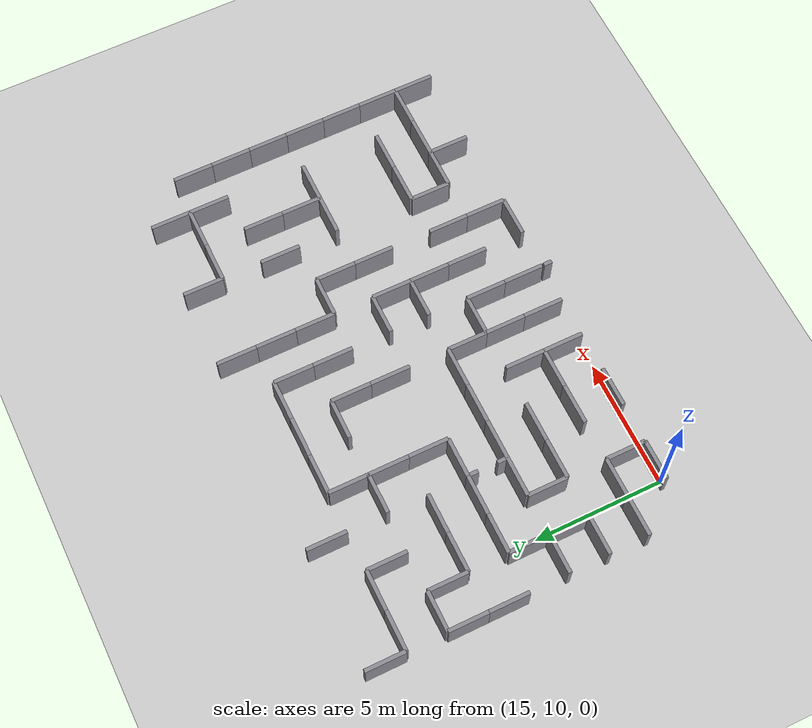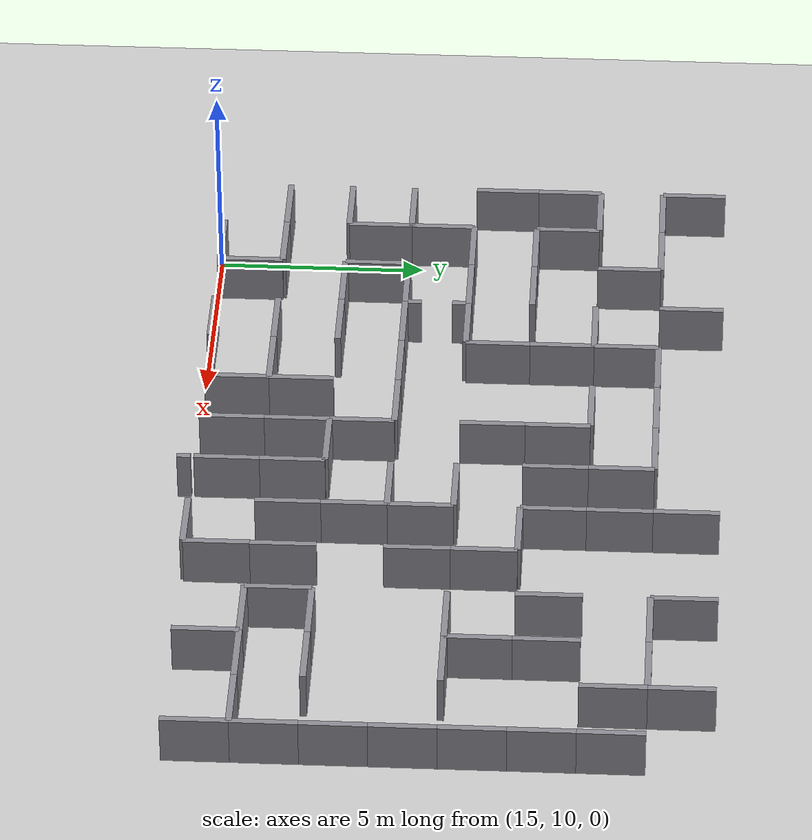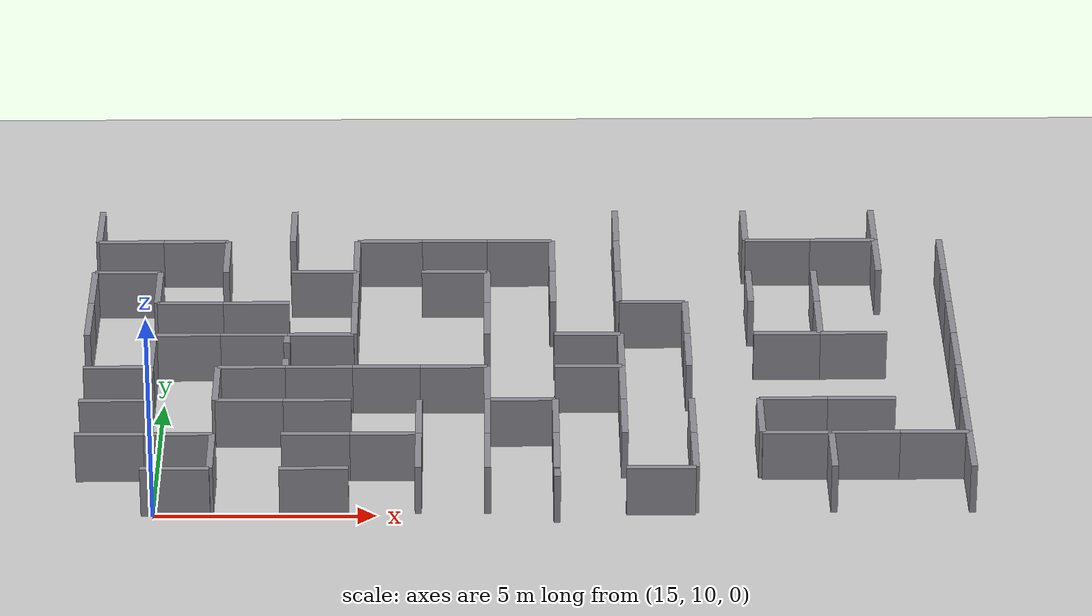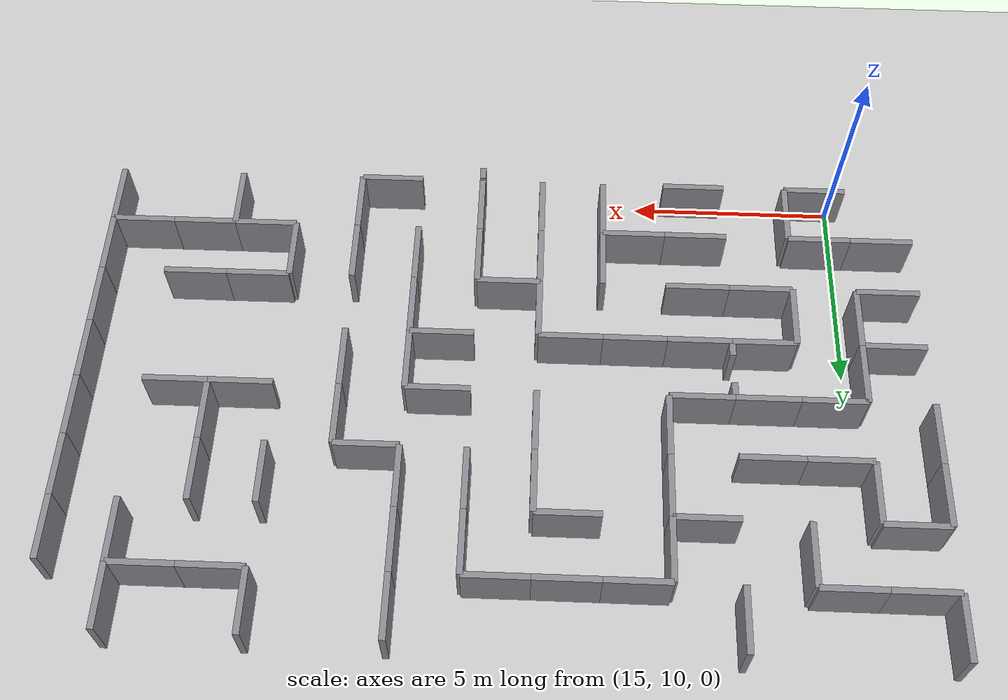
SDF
<sdf version="1.10">
 <world name="sar_maze_generated">
  <model name="ground_plane">
   <static>true</static>
   <link name="link">
    <collision name="collision">
     <geometry><plane><normal>0 0 1</normal><size>51.1 51.1</size></plane></geometry>
    </collision>
    <visual name="visual">
     <geometry><plane><normal>0 0 1</normal><size>51.1 51.1</size></plane></geometry>
     <material><ambient>0.8 0.8 0.8 1</ambient><diffuse>0.8 0.8 0.8 1</diffuse></material>
    </visual>
    <pose>16.27 16.27 0 0 0 0</pose>
    <inertial>
     <mass>1</mass>
     <inertia><ixx>1</ixx><ixy>0</ixy><ixz>0</ixz><iyy>1</iyy><iyz>0</iyz><izz>1</izz></inertia>
    </inertial>
   </link>
  </model>
  <model name="maze_structure">
   <static>true</static>
   <link name="wall_h_150">
    <static>true</static>
    <pose>15.5000 10.0750 0.6000 0 0 0</pose>
    <collision name="wall_h_150_collision">
     <geometry><box><size>1.5500 0.1500 1.2000</size></box></geometry>
    </collision>
    <visual name="wall_h_150_visual">
     <geometry><box><size>1.5500 0.1500 1.2000</size></box></geometry>
     <material><ambient>0.55 0.55 0.58 1</ambient><diffuse>0.55 0.55 0.58 1</diffuse></material>
    </visual>
   </link>
   <link name="wall_h_152">
    <static>true</static>
    <pose>18.6000 10.0750 0.6000 0 0 0</pose>
    <collision name="wall_h_152_collision">
     <geometry><box><size>1.5500 0.1500 1.2000</size></box></geometry>
    </collision>
    <visual name="wall_h_152_visual">
     <geometry><box><size>1.5500 0.1500 1.2000</size></box></geometry>
     <material><ambient>0.55 0.55 0.58 1</ambient><diffuse>0.55 0.55 0.58 1</diffuse></material>
    </visual>
   </link>
   <link name="pinch_stub_155">
    <static>true</static>
    <pose>24.0250 9.8375 0.6000 0 0 0</pose>
    <collision name="pinch_stub_155_collision">
     <geometry><box><size>0.1500 0.3250 1.2000</size></box></geometry>
    </collision>
    <visual name="pinch_stub_155_visual">
     <geometry><box><size>0.1500 0.3250 1.2000</size></box></geometry>
     <material><ambient>0.55 0.55 0.58 1</ambient><diffuse>0.55 0.55 0.58 1</diffuse></material>
    </visual>
   </link>
   <link name="wall_h_156">
    <static>true</static>
    <pose>26.3500 10.0750 0.6000 0 0 0</pose>
    <collision name="wall_h_156_collision">
     <geometry><box><size>1.5500 0.1500 1.2000</size></box></geometry>
    </collision>
    <visual name="wall_h_156_visual">
     <geometry><box><size>1.5500 0.1500 1.2000</size></box></geometry>
     <material><ambient>0.55 0.55 0.58 1</ambient><diffuse>0.55 0.55 0.58 1</diffuse></material>
    </visual>
   </link>
   <link name="wall_h_172">
    <static>true</static>
    <pose>13.9500 11.6250 0.6000 0 0 0</pose>
    <collision name="wall_h_172_collision">
     <geometry><box><size>1.5500 0.1500 1.2000</size></box></geometry>
    </collision>
    <visual name="wall_h_172_visual">
     <geometry><box><size>1.5500 0.1500 1.2000</size></box></geometry>
     <material><ambient>0.55 0.55 0.58 1</ambient><diffuse>0.55 0.55 0.58 1</diffuse></material>
    </visual>
   </link>
   <link name="wall_h_173">
    <static>true</static>
    <pose>15.5000 11.6250 0.6000 0 0 0</pose>
    <collision name="wall_h_173_collision">
     <geometry><box><size>1.5500 0.1500 1.2000</size></box></geometry>
    </collision>
    <visual name="wall_h_173_visual">
     <geometry><box><size>1.5500 0.1500 1.2000</size></box></geometry>
     <material><ambient>0.55 0.55 0.58 1</ambient><diffuse>0.55 0.55 0.58 1</diffuse></material>
    </visual>
   </link>
   <link name="wall_v_174">
    <static>true</static>
    <pose>16.2750 10.8500 0.6000 0 0 0</pose>
    <collision name="wall_v_174_collision">
     <geometry><box><size>0.1500 1.5500 1.2000</size></box></geometry>
    </collision>
    <visual name="wall_v_174_visual">
     <geometry><box><size>0.1500 1.5500 1.2000</size></box></geometry>
     <material><ambient>0.55 0.55 0.58 1</ambient><diffuse>0.55 0.55 0.58 1</diffuse></material>
    </visual>
   </link>
   <link name="wall_h_175">
    <static>true</static>
    <pose>18.6000 11.6250 0.6000 0 0 0</pose>
    <collision name="wall_h_175_collision">
     <geometry><box><size>1.5500 0.1500 1.2000</size></box></geometry>
    </collision>
    <visual name="wall_h_175_visual">
     <geometry><box><size>1.5500 0.1500 1.2000</size></box></geometry>
     <material><ambient>0.55 0.55 0.58 1</ambient><diffuse>0.55 0.55 0.58 1</diffuse></material>
    </visual>
   </link>
   <link name="wall_h_176">
    <static>true</static>
    <pose>20.1500 11.6250 0.6000 0 0 0</pose>
    <collision name="wall_h_176_collision">
     <geometry><box><size>1.5500 0.1500 1.2000</size></box></geometry>
    </collision>
    <visual name="wall_h_176_visual">
     <geometry><box><size>1.5500 0.1500 1.2000</size></box></geometry>
     <material><ambient>0.55 0.55 0.58 1</ambient><diffuse>0.55 0.55 0.58 1</diffuse></material>
    </visual>
   </link>
   <link name="wall_v_177">
    <static>true</static>
    <pose>20.9250 10.8500 0.6000 0 0 0</pose>
    <collision name="wall_v_177_collision">
     <geometry><box><size>0.1500 1.5500 1.2000</size></box></geometry>
    </collision>
    <visual name="wall_v_177_visual">
     <geometry><box><size>0.1500 1.5500 1.2000</size></box></geometry>
     <material><ambient>0.55 0.55 0.58 1</ambient><diffuse>0.55 0.55 0.58 1</diffuse></material>
    </visual>
   </link>
   <link name="wall_v_178">
    <static>true</static>
    <pose>22.4750 10.8500 0.6000 0 0 0</pose>
    <collision name="wall_v_178_collision">
     <geometry><box><size>0.1500 1.5500 1.2000</size></box></geometry>
    </collision>
    <visual name="wall_v_178_visual">
     <geometry><box><size>0.1500 1.5500 1.2000</size></box></geometry>
     <material><ambient>0.55 0.55 0.58 1</ambient><diffuse>0.55 0.55 0.58 1</diffuse></material>
    </visual>
   </link>
   <link name="wall_v_179">
    <static>true</static>
    <pose>24.0250 10.8500 0.6000 0 0 0</pose>
    <collision name="wall_v_179_collision">
     <geometry><box><size>0.1500 1.5500 1.2000</size></box></geometry>
    </collision>
    <visual name="wall_v_179_visual">
     <geometry><box><size>0.1500 1.5500 1.2000</size></box></geometry>
     <material><ambient>0.55 0.55 0.58 1</ambient><diffuse>0.55 0.55 0.58 1</diffuse></material>
    </visual>
   </link>
   <link name="wall_v_180">
    <static>true</static>
    <pose>27.1250 10.8500 0.6000 0 0 0</pose>
    <collision name="wall_v_180_collision">
     <geometry><box><size>0.1500 1.5500 1.2000</size></box></geometry>
    </collision>
    <visual name="wall_v_180_visual">
     <geometry><box><size>0.1500 1.5500 1.2000</size></box></geometry>
     <material><ambient>0.55 0.55 0.58 1</ambient><diffuse>0.55 0.55 0.58 1</diffuse></material>
    </visual>
   </link>
   <link name="wall_h_181">
    <static>true</static>
    <pose>29.4500 11.6250 0.6000 0 0 0</pose>
    <collision name="wall_h_181_collision">
     <geometry><box><size>1.5500 0.1500 1.2000</size></box></geometry>
    </collision>
    <visual name="wall_h_181_visual">
     <geometry><box><size>1.5500 0.1500 1.2000</size></box></geometry>
     <material><ambient>0.55 0.55 0.58 1</ambient><diffuse>0.55 0.55 0.58 1</diffuse></material>
    </visual>
   </link>
   <link name="wall_v_182">
    <static>true</static>
    <pose>30.2250 10.8500 0.6000 0 0 0</pose>
    <collision name="wall_v_182_collision">
     <geometry><box><size>0.1500 1.5500 1.2000</size></box></geometry>
    </collision>
    <visual name="wall_v_182_visual">
     <geometry><box><size>0.1500 1.5500 1.2000</size></box></geometry>
     <material><ambient>0.55 0.55 0.58 1</ambient><diffuse>0.55 0.55 0.58 1</diffuse></material>
    </visual>
   </link>
   <link name="wall_h_183">
    <static>true</static>
    <pose>31.0000 11.6250 0.6000 0 0 0</pose>
    <collision name="wall_h_183_collision">
     <geometry><box><size>1.5500 0.1500 1.2000</size></box></geometry>
    </collision>
    <visual name="wall_h_183_visual">
     <geometry><box><size>1.5500 0.1500 1.2000</size></box></geometry>
     <material><ambient>0.55 0.55 0.58 1</ambient><diffuse>0.55 0.55 0.58 1</diffuse></material>
    </visual>
   </link>
   <link name="wall_h_184">
    <static>true</static>
    <pose>32.5500 11.6250 0.6000 0 0 0</pose>
    <collision name="wall_h_184_collision">
     <geometry><box><size>1.5500 0.1500 1.2000</size></box></geometry>
    </collision>
    <visual name="wall_h_184_visual">
     <geometry><box><size>1.5500 0.1500 1.2000</size></box></geometry>
     <material><ambient>0.55 0.55 0.58 1</ambient><diffuse>0.55 0.55 0.58 1</diffuse></material>
    </visual>
   </link>
   <link name="wall_boundary_v_185">
    <static>true</static>
    <pose>33.3250 10.8500 0.6000 0 0 0</pose>
    <collision name="wall_boundary_v_185_collision">
     <geometry><box><size>0.1500 1.5500 1.2000</size></box></geometry>
    </collision>
    <visual name="wall_boundary_v_185_visual">
     <geometry><box><size>0.1500 1.5500 1.2000</size></box></geometry>
     <material><ambient>0.55 0.55 0.58 1</ambient><diffuse>0.55 0.55 0.58 1</diffuse></material>
    </visual>
   </link>
   <link name="wall_h_195">
    <static>true</static>
    <pose>13.9500 13.1750 0.6000 0 0 0</pose>
    <collision name="wall_h_195_collision">
     <geometry><box><size>1.5500 0.1500 1.2000</size></box></geometry>
    </collision>
    <visual name="wall_h_195_visual">
     <geometry><box><size>1.5500 0.1500 1.2000</size></box></geometry>
     <material><ambient>0.55 0.55 0.58 1</ambient><diffuse>0.55 0.55 0.58 1</diffuse></material>
    </visual>
   </link>
   <link name="wall_h_196">
    <static>true</static>
    <pose>17.0500 13.1750 0.6000 0 0 0</pose>
    <collision name="wall_h_196_collision">
     <geometry><box><size>1.5500 0.1500 1.2000</size></box></geometry>
    </collision>
    <visual name="wall_h_196_visual">
     <geometry><box><size>1.5500 0.1500 1.2000</size></box></geometry>
     <material><ambient>0.55 0.55 0.58 1</ambient><diffuse>0.55 0.55 0.58 1</diffuse></material>
    </visual>
   </link>
   <link name="wall_h_197">
    <static>true</static>
    <pose>18.6000 13.1750 0.6000 0 0 0</pose>
    <collision name="wall_h_197_collision">
     <geometry><box><size>1.5500 0.1500 1.2000</size></box></geometry>
    </collision>
    <visual name="wall_h_197_visual">
     <geometry><box><size>1.5500 0.1500 1.2000</size></box></geometry>
     <material><ambient>0.55 0.55 0.58 1</ambient><diffuse>0.55 0.55 0.58 1</diffuse></material>
    </visual>
   </link>
   <link name="wall_v_198">
    <static>true</static>
    <pose>20.9250 12.4000 0.6000 0 0 0</pose>
    <collision name="wall_v_198_collision">
     <geometry><box><size>0.1500 1.5500 1.2000</size></box></geometry>
    </collision>
    <visual name="wall_v_198_visual">
     <geometry><box><size>0.1500 1.5500 1.2000</size></box></geometry>
     <material><ambient>0.55 0.55 0.58 1</ambient><diffuse>0.55 0.55 0.58 1</diffuse></material>
    </visual>
   </link>
   <link name="wall_v_199">
    <static>true</static>
    <pose>22.4750 12.4000 0.6000 0 0 0</pose>
    <collision name="wall_v_199_collision">
     <geometry><box><size>0.1500 1.5500 1.2000</size></box></geometry>
    </collision>
    <visual name="wall_v_199_visual">
     <geometry><box><size>0.1500 1.5500 1.2000</size></box></geometry>
     <material><ambient>0.55 0.55 0.58 1</ambient><diffuse>0.55 0.55 0.58 1</diffuse></material>
    </visual>
   </link>
   <link name="wall_h_200">
    <static>true</static>
    <pose>23.2500 13.1750 0.6000 0 0 0</pose>
    <collision name="wall_h_200_collision">
     <geometry><box><size>1.5500 0.1500 1.2000</size></box></geometry>
    </collision>
    <visual name="wall_h_200_visual">
     <geometry><box><size>1.5500 0.1500 1.2000</size></box></geometry>
     <material><ambient>0.55 0.55 0.58 1</ambient><diffuse>0.55 0.55 0.58 1</diffuse></material>
    </visual>
   </link>
   <link name="wall_v_201">
    <static>true</static>
    <pose>24.0250 12.4000 0.6000 0 0 0</pose>
    <collision name="wall_v_201_collision">
     <geometry><box><size>0.1500 1.5500 1.2000</size></box></geometry>
    </collision>
    <visual name="wall_v_201_visual">
     <geometry><box><size>0.1500 1.5500 1.2000</size></box></geometry>
     <material><ambient>0.55 0.55 0.58 1</ambient><diffuse>0.55 0.55 0.58 1</diffuse></material>
    </visual>
   </link>
   <link name="wall_v_202">
    <static>true</static>
    <pose>25.5750 12.4000 0.6000 0 0 0</pose>
    <collision name="wall_v_202_collision">
     <geometry><box><size>0.1500 1.5500 1.2000</size></box></geometry>
    </collision>
    <visual name="wall_v_202_visual">
     <geometry><box><size>0.1500 1.5500 1.2000</size></box></geometry>
     <material><ambient>0.55 0.55 0.58 1</ambient><diffuse>0.55 0.55 0.58 1</diffuse></material>
    </visual>
   </link>
   <link name="wall_v_203">
    <static>true</static>
    <pose>27.1250 12.4000 0.6000 0 0 0</pose>
    <collision name="wall_v_203_collision">
     <geometry><box><size>0.1500 1.5500 1.2000</size></box></geometry>
    </collision>
    <visual name="wall_v_203_visual">
     <geometry><box><size>0.1500 1.5500 1.2000</size></box></geometry>
     <material><ambient>0.55 0.55 0.58 1</ambient><diffuse>0.55 0.55 0.58 1</diffuse></material>
    </visual>
   </link>
   <link name="wall_v_204">
    <static>true</static>
    <pose>28.6750 12.4000 0.6000 0 0 0</pose>
    <collision name="wall_v_204_collision">
     <geometry><box><size>0.1500 1.5500 1.2000</size></box></geometry>
    </collision>
    <visual name="wall_v_204_visual">
     <geometry><box><size>0.1500 1.5500 1.2000</size></box></geometry>
     <material><ambient>0.55 0.55 0.58 1</ambient><diffuse>0.55 0.55 0.58 1</diffuse></material>
    </visual>
   </link>
   <link name="wall_h_205">
    <static>true</static>
    <pose>29.4500 13.1750 0.6000 0 0 0</pose>
    <collision name="wall_h_205_collision">
     <geometry><box><size>1.5500 0.1500 1.2000</size></box></geometry>
    </collision>
    <visual name="wall_h_205_visual">
     <geometry><box><size>1.5500 0.1500 1.2000</size></box></geometry>
     <material><ambient>0.55 0.55 0.58 1</ambient><diffuse>0.55 0.55 0.58 1</diffuse></material>
    </visual>
   </link>
   <link name="wall_h_206">
    <static>true</static>
    <pose>31.0000 13.1750 0.6000 0 0 0</pose>
    <collision name="wall_h_206_collision">
     <geometry><box><size>1.5500 0.1500 1.2000</size></box></geometry>
    </collision>
    <visual name="wall_h_206_visual">
     <geometry><box><size>1.5500 0.1500 1.2000</size></box></geometry>
     <material><ambient>0.55 0.55 0.58 1</ambient><diffuse>0.55 0.55 0.58 1</diffuse></material>
    </visual>
   </link>
   <link name="wall_boundary_v_207">
    <static>true</static>
    <pose>33.3250 12.4000 0.6000 0 0 0</pose>
    <collision name="wall_boundary_v_207_collision">
     <geometry><box><size>0.1500 1.5500 1.2000</size></box></geometry>
    </collision>
    <visual name="wall_boundary_v_207_visual">
     <geometry><box><size>0.1500 1.5500 1.2000</size></box></geometry>
     <material><ambient>0.55 0.55 0.58 1</ambient><diffuse>0.55 0.55 0.58 1</diffuse></material>
    </visual>
   </link>
   <link name="wall_h_218">
    <static>true</static>
    <pose>13.9500 14.7250 0.6000 0 0 0</pose>
    <collision name="wall_h_218_collision">
     <geometry><box><size>1.5500 0.1500 1.2000</size></box></geometry>
    </collision>
    <visual name="wall_h_218_visual">
     <geometry><box><size>1.5500 0.1500 1.2000</size></box></geometry>
     <material><ambient>0.55 0.55 0.58 1</ambient><diffuse>0.55 0.55 0.58 1</diffuse></material>
    </visual>
   </link>
   <link name="wall_v_219">
    <static>true</static>
    <pose>14.7250 13.9500 0.6000 0 0 0</pose>
    <collision name="wall_v_219_collision">
     <geometry><box><size>0.1500 1.5500 1.2000</size></box></geometry>
    </collision>
    <visual name="wall_v_219_visual">
     <geometry><box><size>0.1500 1.5500 1.2000</size></box></geometry>
     <material><ambient>0.55 0.55 0.58 1</ambient><diffuse>0.55 0.55 0.58 1</diffuse></material>
    </visual>
   </link>
   <link name="wall_v_220">
    <static>true</static>
    <pose>16.2750 13.9500 0.6000 0 0 0</pose>
    <collision name="wall_v_220_collision">
     <geometry><box><size>0.1500 1.5500 1.2000</size></box></geometry>
    </collision>
    <visual name="wall_v_220_visual">
     <geometry><box><size>0.1500 1.5500 1.2000</size></box></geometry>
     <material><ambient>0.55 0.55 0.58 1</ambient><diffuse>0.55 0.55 0.58 1</diffuse></material>
    </visual>
   </link>
   <link name="wall_h_221">
    <static>true</static>
    <pose>17.0500 14.7250 0.6000 0 0 0</pose>
    <collision name="wall_h_221_collision">
     <geometry><box><size>1.5500 0.1500 1.2000</size></box></geometry>
    </collision>
    <visual name="wall_h_221_visual">
     <geometry><box><size>1.5500 0.1500 1.2000</size></box></geometry>
     <material><ambient>0.55 0.55 0.58 1</ambient><diffuse>0.55 0.55 0.58 1</diffuse></material>
    </visual>
   </link>
   <link name="wall_h_222">
    <static>true</static>
    <pose>18.6000 14.7250 0.6000 0 0 0</pose>
    <collision name="wall_h_222_collision">
     <geometry><box><size>1.5500 0.1500 1.2000</size></box></geometry>
    </collision>
    <visual name="wall_h_222_visual">
     <geometry><box><size>1.5500 0.1500 1.2000</size></box></geometry>
     <material><ambient>0.55 0.55 0.58 1</ambient><diffuse>0.55 0.55 0.58 1</diffuse></material>
    </visual>
   </link>
   <link name="wall_h_223">
    <static>true</static>
    <pose>20.1500 14.7250 0.6000 0 0 0</pose>
    <collision name="wall_h_223_collision">
     <geometry><box><size>1.5500 0.1500 1.2000</size></box></geometry>
    </collision>
    <visual name="wall_h_223_visual">
     <geometry><box><size>1.5500 0.1500 1.2000</size></box></geometry>
     <material><ambient>0.55 0.55 0.58 1</ambient><diffuse>0.55 0.55 0.58 1</diffuse></material>
    </visual>
   </link>
   <link name="wall_h_224">
    <static>true</static>
    <pose>21.7000 14.7250 0.6000 0 0 0</pose>
    <collision name="wall_h_224_collision">
     <geometry><box><size>1.5500 0.1500 1.2000</size></box></geometry>
    </collision>
    <visual name="wall_h_224_visual">
     <geometry><box><size>1.5500 0.1500 1.2000</size></box></geometry>
     <material><ambient>0.55 0.55 0.58 1</ambient><diffuse>0.55 0.55 0.58 1</diffuse></material>
    </visual>
   </link>
   <link name="wall_v_225">
    <static>true</static>
    <pose>22.4750 13.9500 0.6000 0 0 0</pose>
    <collision name="wall_v_225_collision">
     <geometry><box><size>0.1500 1.5500 1.2000</size></box></geometry>
    </collision>
    <visual name="wall_v_225_visual">
     <geometry><box><size>0.1500 1.5500 1.2000</size></box></geometry>
     <material><ambient>0.55 0.55 0.58 1</ambient><diffuse>0.55 0.55 0.58 1</diffuse></material>
    </visual>
   </link>
   <link name="wall_h_226">
    <static>true</static>
    <pose>24.8000 14.7250 0.6000 0 0 0</pose>
    <collision name="wall_h_226_collision">
     <geometry><box><size>1.5500 0.1500 1.2000</size></box></geometry>
    </collision>
    <visual name="wall_h_226_visual">
     <geometry><box><size>1.5500 0.1500 1.2000</size></box></geometry>
     <material><ambient>0.55 0.55 0.58 1</ambient><diffuse>0.55 0.55 0.58 1</diffuse></material>
    </visual>
   </link>
   <link name="wall_v_227">
    <static>true</static>
    <pose>25.5750 13.9500 0.6000 0 0 0</pose>
    <collision name="wall_v_227_collision">
     <geometry><box><size>0.1500 1.5500 1.2000</size></box></geometry>
    </collision>
    <visual name="wall_v_227_visual">
     <geometry><box><size>0.1500 1.5500 1.2000</size></box></geometry>
     <material><ambient>0.55 0.55 0.58 1</ambient><diffuse>0.55 0.55 0.58 1</diffuse></material>
    </visual>
   </link>
   <link name="wall_boundary_v_228">
    <static>true</static>
    <pose>33.3250 13.9500 0.6000 0 0 0</pose>
    <collision name="wall_boundary_v_228_collision">
     <geometry><box><size>0.1500 1.5500 1.2000</size></box></geometry>
    </collision>
    <visual name="wall_boundary_v_228_visual">
     <geometry><box><size>0.1500 1.5500 1.2000</size></box></geometry>
     <material><ambient>0.55 0.55 0.58 1</ambient><diffuse>0.55 0.55 0.58 1</diffuse></material>
    </visual>
   </link>
   <link name="wall_v_236">
    <static>true</static>
    <pose>14.7250 15.5000 0.6000 0 0 0</pose>
    <collision name="wall_v_236_collision">
     <geometry><box><size>0.1500 1.5500 1.2000</size></box></geometry>
    </collision>
    <visual name="wall_v_236_visual">
     <geometry><box><size>0.1500 1.5500 1.2000</size></box></geometry>
     <material><ambient>0.55 0.55 0.58 1</ambient><diffuse>0.55 0.55 0.58 1</diffuse></material>
    </visual>
   </link>
   <link name="wall_h_237">
    <static>true</static>
    <pose>15.5000 16.2750 0.6000 0 0 0</pose>
    <collision name="wall_h_237_collision">
     <geometry><box><size>1.5500 0.1500 1.2000</size></box></geometry>
    </collision>
    <visual name="wall_h_237_visual">
     <geometry><box><size>1.5500 0.1500 1.2000</size></box></geometry>
     <material><ambient>0.55 0.55 0.58 1</ambient><diffuse>0.55 0.55 0.58 1</diffuse></material>
    </visual>
   </link>
   <link name="wall_h_238">
    <static>true</static>
    <pose>17.0500 16.2750 0.6000 0 0 0</pose>
    <collision name="wall_h_238_collision">
     <geometry><box><size>1.5500 0.1500 1.2000</size></box></geometry>
    </collision>
    <visual name="wall_h_238_visual">
     <geometry><box><size>1.5500 0.1500 1.2000</size></box></geometry>
     <material><ambient>0.55 0.55 0.58 1</ambient><diffuse>0.55 0.55 0.58 1</diffuse></material>
    </visual>
   </link>
   <link name="pinch_stub_239">
    <static>true</static>
    <pose>17.8250 14.9625 0.6000 0 0 0</pose>
    <collision name="pinch_stub_239_collision">
     <geometry><box><size>0.1500 0.3250 1.2000</size></box></geometry>
    </collision>
    <visual name="pinch_stub_239_visual">
     <geometry><box><size>0.1500 0.3250 1.2000</size></box></geometry>
     <material><ambient>0.55 0.55 0.58 1</ambient><diffuse>0.55 0.55 0.58 1</diffuse></material>
    </visual>
   </link>
   <link name="pinch_stub_240">
    <static>true</static>
    <pose>17.8250 16.0375 0.6000 0 0 0</pose>
    <collision name="pinch_stub_240_collision">
     <geometry><box><size>0.1500 0.3250 1.2000</size></box></geometry>
    </collision>
    <visual name="pinch_stub_240_visual">
     <geometry><box><size>0.1500 0.3250 1.2000</size></box></geometry>
     <material><ambient>0.55 0.55 0.58 1</ambient><diffuse>0.55 0.55 0.58 1</diffuse></material>
    </visual>
   </link>
   <link name="wall_h_241">
    <static>true</static>
    <pose>18.6000 16.2750 0.6000 0 0 0</pose>
    <collision name="wall_h_241_collision">
     <geometry><box><size>1.5500 0.1500 1.2000</size></box></geometry>
    </collision>
    <visual name="wall_h_241_visual">
     <geometry><box><size>1.5500 0.1500 1.2000</size></box></geometry>
     <material><ambient>0.55 0.55 0.58 1</ambient><diffuse>0.55 0.55 0.58 1</diffuse></material>
    </visual>
   </link>
   <link name="wall_h_242">
    <static>true</static>
    <pose>24.8000 16.2750 0.6000 0 0 0</pose>
    <collision name="wall_h_242_collision">
     <geometry><box><size>1.5500 0.1500 1.2000</size></box></geometry>
    </collision>
    <visual name="wall_h_242_visual">
     <geometry><box><size>1.5500 0.1500 1.2000</size></box></geometry>
     <material><ambient>0.55 0.55 0.58 1</ambient><diffuse>0.55 0.55 0.58 1</diffuse></material>
    </visual>
   </link>
   <link name="wall_v_243">
    <static>true</static>
    <pose>25.5750 15.5000 0.6000 0 0 0</pose>
    <collision name="wall_v_243_collision">
     <geometry><box><size>0.1500 1.5500 1.2000</size></box></geometry>
    </collision>
    <visual name="wall_v_243_visual">
     <geometry><box><size>0.1500 1.5500 1.2000</size></box></geometry>
     <material><ambient>0.55 0.55 0.58 1</ambient><diffuse>0.55 0.55 0.58 1</diffuse></material>
    </visual>
   </link>
   <link name="wall_v_244">
    <static>true</static>
    <pose>27.1250 15.5000 0.6000 0 0 0</pose>
    <collision name="wall_v_244_collision">
     <geometry><box><size>0.1500 1.5500 1.2000</size></box></geometry>
    </collision>
    <visual name="wall_v_244_visual">
     <geometry><box><size>0.1500 1.5500 1.2000</size></box></geometry>
     <material><ambient>0.55 0.55 0.58 1</ambient><diffuse>0.55 0.55 0.58 1</diffuse></material>
    </visual>
   </link>
   <link name="wall_h_245">
    <static>true</static>
    <pose>29.4500 16.2750 0.6000 0 0 0</pose>
    <collision name="wall_h_245_collision">
     <geometry><box><size>1.5500 0.1500 1.2000</size></box></geometry>
    </collision>
    <visual name="wall_h_245_visual">
     <geometry><box><size>1.5500 0.1500 1.2000</size></box></geometry>
     <material><ambient>0.55 0.55 0.58 1</ambient><diffuse>0.55 0.55 0.58 1</diffuse></material>
    </visual>
   </link>
   <link name="wall_h_246">
    <static>true</static>
    <pose>31.0000 16.2750 0.6000 0 0 0</pose>
    <collision name="wall_h_246_collision">
     <geometry><box><size>1.5500 0.1500 1.2000</size></box></geometry>
    </collision>
    <visual name="wall_h_246_visual">
     <geometry><box><size>1.5500 0.1500 1.2000</size></box></geometry>
     <material><ambient>0.55 0.55 0.58 1</ambient><diffuse>0.55 0.55 0.58 1</diffuse></material>
    </visual>
   </link>
   <link name="wall_boundary_v_247">
    <static>true</static>
    <pose>33.3250 15.5000 0.6000 0 0 0</pose>
    <collision name="wall_boundary_v_247_collision">
     <geometry><box><size>0.1500 1.5500 1.2000</size></box></geometry>
    </collision>
    <visual name="wall_boundary_v_247_visual">
     <geometry><box><size>0.1500 1.5500 1.2000</size></box></geometry>
     <material><ambient>0.55 0.55 0.58 1</ambient><diffuse>0.55 0.55 0.58 1</diffuse></material>
    </visual>
   </link>
   <link name="wall_v_257">
    <static>true</static>
    <pose>13.1750 17.0500 0.6000 0 0 0</pose>
    <collision name="wall_v_257_collision">
     <geometry><box><size>0.1500 1.5500 1.2000</size></box></geometry>
    </collision>
    <visual name="wall_v_257_visual">
     <geometry><box><size>0.1500 1.5500 1.2000</size></box></geometry>
     <material><ambient>0.55 0.55 0.58 1</ambient><diffuse>0.55 0.55 0.58 1</diffuse></material>
    </visual>
   </link>
   <link name="wall_h_258">
    <static>true</static>
    <pose>15.5000 17.8250 0.6000 0 0 0</pose>
    <collision name="wall_h_258_collision">
     <geometry><box><size>1.5500 0.1500 1.2000</size></box></geometry>
    </collision>
    <visual name="wall_h_258_visual">
     <geometry><box><size>1.5500 0.1500 1.2000</size></box></geometry>
     <material><ambient>0.55 0.55 0.58 1</ambient><diffuse>0.55 0.55 0.58 1</diffuse></material>
    </visual>
   </link>
   <link name="wall_h_259">
    <static>true</static>
    <pose>17.0500 17.8250 0.6000 0 0 0</pose>
    <collision name="wall_h_259_collision">
     <geometry><box><size>1.5500 0.1500 1.2000</size></box></geometry>
    </collision>
    <visual name="wall_h_259_visual">
     <geometry><box><size>1.5500 0.1500 1.2000</size></box></geometry>
     <material><ambient>0.55 0.55 0.58 1</ambient><diffuse>0.55 0.55 0.58 1</diffuse></material>
    </visual>
   </link>
   <link name="wall_v_260">
    <static>true</static>
    <pose>19.3750 17.0500 0.6000 0 0 0</pose>
    <collision name="wall_v_260_collision">
     <geometry><box><size>0.1500 1.5500 1.2000</size></box></geometry>
    </collision>
    <visual name="wall_v_260_visual">
     <geometry><box><size>0.1500 1.5500 1.2000</size></box></geometry>
     <material><ambient>0.55 0.55 0.58 1</ambient><diffuse>0.55 0.55 0.58 1</diffuse></material>
    </visual>
   </link>
   <link name="wall_v_261">
    <static>true</static>
    <pose>22.4750 17.0500 0.6000 0 0 0</pose>
    <collision name="wall_v_261_collision">
     <geometry><box><size>0.1500 1.5500 1.2000</size></box></geometry>
    </collision>
    <visual name="wall_v_261_visual">
     <geometry><box><size>0.1500 1.5500 1.2000</size></box></geometry>
     <material><ambient>0.55 0.55 0.58 1</ambient><diffuse>0.55 0.55 0.58 1</diffuse></material>
    </visual>
   </link>
   <link name="wall_h_262">
    <static>true</static>
    <pose>26.3500 17.8250 0.6000 0 0 0</pose>
    <collision name="wall_h_262_collision">
     <geometry><box><size>1.5500 0.1500 1.2000</size></box></geometry>
    </collision>
    <visual name="wall_h_262_visual">
     <geometry><box><size>1.5500 0.1500 1.2000</size></box></geometry>
     <material><ambient>0.55 0.55 0.58 1</ambient><diffuse>0.55 0.55 0.58 1</diffuse></material>
    </visual>
   </link>
   <link name="wall_v_263">
    <static>true</static>
    <pose>27.1250 17.0500 0.6000 0 0 0</pose>
    <collision name="wall_v_263_collision">
     <geometry><box><size>0.1500 1.5500 1.2000</size></box></geometry>
    </collision>
    <visual name="wall_v_263_visual">
     <geometry><box><size>0.1500 1.5500 1.2000</size></box></geometry>
     <material><ambient>0.55 0.55 0.58 1</ambient><diffuse>0.55 0.55 0.58 1</diffuse></material>
    </visual>
   </link>
   <link name="wall_v_264">
    <static>true</static>
    <pose>30.2250 17.0500 0.6000 0 0 0</pose>
    <collision name="wall_v_264_collision">
     <geometry><box><size>0.1500 1.5500 1.2000</size></box></geometry>
    </collision>
    <visual name="wall_v_264_visual">
     <geometry><box><size>0.1500 1.5500 1.2000</size></box></geometry>
     <material><ambient>0.55 0.55 0.58 1</ambient><diffuse>0.55 0.55 0.58 1</diffuse></material>
    </visual>
   </link>
   <link name="wall_boundary_v_265">
    <static>true</static>
    <pose>33.3250 17.0500 0.6000 0 0 0</pose>
    <collision name="wall_boundary_v_265_collision">
     <geometry><box><size>0.1500 1.5500 1.2000</size></box></geometry>
    </collision>
    <visual name="wall_boundary_v_265_visual">
     <geometry><box><size>0.1500 1.5500 1.2000</size></box></geometry>
     <material><ambient>0.55 0.55 0.58 1</ambient><diffuse>0.55 0.55 0.58 1</diffuse></material>
    </visual>
   </link>
   <link name="wall_v_272">
    <static>true</static>
    <pose>13.1750 18.6000 0.6000 0 0 0</pose>
    <collision name="wall_v_272_collision">
     <geometry><box><size>0.1500 1.5500 1.2000</size></box></geometry>
    </collision>
    <visual name="wall_v_272_visual">
     <geometry><box><size>0.1500 1.5500 1.2000</size></box></geometry>
     <material><ambient>0.55 0.55 0.58 1</ambient><diffuse>0.55 0.55 0.58 1</diffuse></material>
    </visual>
   </link>
   <link name="wall_h_273">
    <static>true</static>
    <pose>13.9500 19.3750 0.6000 0 0 0</pose>
    <collision name="wall_h_273_collision">
     <geometry><box><size>1.5500 0.1500 1.2000</size></box></geometry>
    </collision>
    <visual name="wall_h_273_visual">
     <geometry><box><size>1.5500 0.1500 1.2000</size></box></geometry>
     <material><ambient>0.55 0.55 0.58 1</ambient><diffuse>0.55 0.55 0.58 1</diffuse></material>
    </visual>
   </link>
   <link name="wall_v_274">
    <static>true</static>
    <pose>14.7250 18.6000 0.6000 0 0 0</pose>
    <collision name="wall_v_274_collision">
     <geometry><box><size>0.1500 1.5500 1.2000</size></box></geometry>
    </collision>
    <visual name="wall_v_274_visual">
     <geometry><box><size>0.1500 1.5500 1.2000</size></box></geometry>
     <material><ambient>0.55 0.55 0.58 1</ambient><diffuse>0.55 0.55 0.58 1</diffuse></material>
    </visual>
   </link>
   <link name="wall_h_275">
    <static>true</static>
    <pose>18.6000 19.3750 0.6000 0 0 0</pose>
    <collision name="wall_h_275_collision">
     <geometry><box><size>1.5500 0.1500 1.2000</size></box></geometry>
    </collision>
    <visual name="wall_h_275_visual">
     <geometry><box><size>1.5500 0.1500 1.2000</size></box></geometry>
     <material><ambient>0.55 0.55 0.58 1</ambient><diffuse>0.55 0.55 0.58 1</diffuse></material>
    </visual>
   </link>
   <link name="wall_v_276">
    <static>true</static>
    <pose>19.3750 18.6000 0.6000 0 0 0</pose>
    <collision name="wall_v_276_collision">
     <geometry><box><size>0.1500 1.5500 1.2000</size></box></geometry>
    </collision>
    <visual name="wall_v_276_visual">
     <geometry><box><size>0.1500 1.5500 1.2000</size></box></geometry>
     <material><ambient>0.55 0.55 0.58 1</ambient><diffuse>0.55 0.55 0.58 1</diffuse></material>
    </visual>
   </link>
   <link name="wall_h_277">
    <static>true</static>
    <pose>21.7000 19.3750 0.6000 0 0 0</pose>
    <collision name="wall_h_277_collision">
     <geometry><box><size>1.5500 0.1500 1.2000</size></box></geometry>
    </collision>
    <visual name="wall_h_277_visual">
     <geometry><box><size>1.5500 0.1500 1.2000</size></box></geometry>
     <material><ambient>0.55 0.55 0.58 1</ambient><diffuse>0.55 0.55 0.58 1</diffuse></material>
    </visual>
   </link>
   <link name="wall_v_278">
    <static>true</static>
    <pose>22.4750 18.6000 0.6000 0 0 0</pose>
    <collision name="wall_v_278_collision">
     <geometry><box><size>0.1500 1.5500 1.2000</size></box></geometry>
    </collision>
    <visual name="wall_v_278_visual">
     <geometry><box><size>0.1500 1.5500 1.2000</size></box></geometry>
     <material><ambient>0.55 0.55 0.58 1</ambient><diffuse>0.55 0.55 0.58 1</diffuse></material>
    </visual>
   </link>
   <link name="wall_v_279">
    <static>true</static>
    <pose>24.0250 18.6000 0.6000 0 0 0</pose>
    <collision name="wall_v_279_collision">
     <geometry><box><size>0.1500 1.5500 1.2000</size></box></geometry>
    </collision>
    <visual name="wall_v_279_visual">
     <geometry><box><size>0.1500 1.5500 1.2000</size></box></geometry>
     <material><ambient>0.55 0.55 0.58 1</ambient><diffuse>0.55 0.55 0.58 1</diffuse></material>
    </visual>
   </link>
   <link name="wall_v_280">
    <static>true</static>
    <pose>25.5750 18.6000 0.6000 0 0 0</pose>
    <collision name="wall_v_280_collision">
     <geometry><box><size>0.1500 1.5500 1.2000</size></box></geometry>
    </collision>
    <visual name="wall_v_280_visual">
     <geometry><box><size>0.1500 1.5500 1.2000</size></box></geometry>
     <material><ambient>0.55 0.55 0.58 1</ambient><diffuse>0.55 0.55 0.58 1</diffuse></material>
    </visual>
   </link>
   <link name="wall_v_281">
    <static>true</static>
    <pose>28.6750 18.6000 0.6000 0 0 0</pose>
    <collision name="wall_v_281_collision">
     <geometry><box><size>0.1500 1.5500 1.2000</size></box></geometry>
    </collision>
    <visual name="wall_v_281_visual">
     <geometry><box><size>0.1500 1.5500 1.2000</size></box></geometry>
     <material><ambient>0.55 0.55 0.58 1</ambient><diffuse>0.55 0.55 0.58 1</diffuse></material>
    </visual>
   </link>
   <link name="wall_v_282">
    <static>true</static>
    <pose>30.2250 18.6000 0.6000 0 0 0</pose>
    <collision name="wall_v_282_collision">
     <geometry><box><size>0.1500 1.5500 1.2000</size></box></geometry>
    </collision>
    <visual name="wall_v_282_visual">
     <geometry><box><size>0.1500 1.5500 1.2000</size></box></geometry>
     <material><ambient>0.55 0.55 0.58 1</ambient><diffuse>0.55 0.55 0.58 1</diffuse></material>
    </visual>
   </link>
   <link name="wall_boundary_v_283">
    <static>true</static>
    <pose>33.3250 18.6000 0.6000 0 0 0</pose>
    <collision name="wall_boundary_v_283_collision">
     <geometry><box><size>0.1500 1.5500 1.2000</size></box></geometry>
    </collision>
    <visual name="wall_boundary_v_283_visual">
     <geometry><box><size>0.1500 1.5500 1.2000</size></box></geometry>
     <material><ambient>0.55 0.55 0.58 1</ambient><diffuse>0.55 0.55 0.58 1</diffuse></material>
    </visual>
   </link>
   <link name="wall_h_291">
    <static>true</static>
    <pose>13.9500 20.9250 0.6000 0 0 0</pose>
    <collision name="wall_h_291_collision">
     <geometry><box><size>1.5500 0.1500 1.2000</size></box></geometry>
    </collision>
    <visual name="wall_h_291_visual">
     <geometry><box><size>1.5500 0.1500 1.2000</size></box></geometry>
     <material><ambient>0.55 0.55 0.58 1</ambient><diffuse>0.55 0.55 0.58 1</diffuse></material>
    </visual>
   </link>
   <link name="wall_h_292">
    <static>true</static>
    <pose>15.5000 20.9250 0.6000 0 0 0</pose>
    <collision name="wall_h_292_collision">
     <geometry><box><size>1.5500 0.1500 1.2000</size></box></geometry>
    </collision>
    <visual name="wall_h_292_visual">
     <geometry><box><size>1.5500 0.1500 1.2000</size></box></geometry>
     <material><ambient>0.55 0.55 0.58 1</ambient><diffuse>0.55 0.55 0.58 1</diffuse></material>
    </visual>
   </link>
   <link name="wall_v_293">
    <static>true</static>
    <pose>16.2750 20.1500 0.6000 0 0 0</pose>
    <collision name="wall_v_293_collision">
     <geometry><box><size>0.1500 1.5500 1.2000</size></box></geometry>
    </collision>
    <visual name="wall_v_293_visual">
     <geometry><box><size>0.1500 1.5500 1.2000</size></box></geometry>
     <material><ambient>0.55 0.55 0.58 1</ambient><diffuse>0.55 0.55 0.58 1</diffuse></material>
    </visual>
   </link>
   <link name="wall_v_294">
    <static>true</static>
    <pose>19.3750 20.1500 0.6000 0 0 0</pose>
    <collision name="wall_v_294_collision">
     <geometry><box><size>0.1500 1.5500 1.2000</size></box></geometry>
    </collision>
    <visual name="wall_v_294_visual">
     <geometry><box><size>0.1500 1.5500 1.2000</size></box></geometry>
     <material><ambient>0.55 0.55 0.58 1</ambient><diffuse>0.55 0.55 0.58 1</diffuse></material>
    </visual>
   </link>
   <link name="wall_h_295">
    <static>true</static>
    <pose>20.1500 20.9250 0.6000 0 0 0</pose>
    <collision name="wall_h_295_collision">
     <geometry><box><size>1.5500 0.1500 1.2000</size></box></geometry>
    </collision>
    <visual name="wall_h_295_visual">
     <geometry><box><size>1.5500 0.1500 1.2000</size></box></geometry>
     <material><ambient>0.55 0.55 0.58 1</ambient><diffuse>0.55 0.55 0.58 1</diffuse></material>
    </visual>
   </link>
   <link name="wall_h_296">
    <static>true</static>
    <pose>21.7000 20.9250 0.6000 0 0 0</pose>
    <collision name="wall_h_296_collision">
     <geometry><box><size>1.5500 0.1500 1.2000</size></box></geometry>
    </collision>
    <visual name="wall_h_296_visual">
     <geometry><box><size>1.5500 0.1500 1.2000</size></box></geometry>
     <material><ambient>0.55 0.55 0.58 1</ambient><diffuse>0.55 0.55 0.58 1</diffuse></material>
    </visual>
   </link>
   <link name="wall_h_297">
    <static>true</static>
    <pose>23.2500 20.9250 0.6000 0 0 0</pose>
    <collision name="wall_h_297_collision">
     <geometry><box><size>1.5500 0.1500 1.2000</size></box></geometry>
    </collision>
    <visual name="wall_h_297_visual">
     <geometry><box><size>1.5500 0.1500 1.2000</size></box></geometry>
     <material><ambient>0.55 0.55 0.58 1</ambient><diffuse>0.55 0.55 0.58 1</diffuse></material>
    </visual>
   </link>
   <link name="wall_v_298">
    <static>true</static>
    <pose>24.0250 20.1500 0.6000 0 0 0</pose>
    <collision name="wall_v_298_collision">
     <geometry><box><size>0.1500 1.5500 1.2000</size></box></geometry>
    </collision>
    <visual name="wall_v_298_visual">
     <geometry><box><size>0.1500 1.5500 1.2000</size></box></geometry>
     <material><ambient>0.55 0.55 0.58 1</ambient><diffuse>0.55 0.55 0.58 1</diffuse></material>
    </visual>
   </link>
   <link name="wall_v_299">
    <static>true</static>
    <pose>25.5750 20.1500 0.6000 0 0 0</pose>
    <collision name="wall_v_299_collision">
     <geometry><box><size>0.1500 1.5500 1.2000</size></box></geometry>
    </collision>
    <visual name="wall_v_299_visual">
     <geometry><box><size>0.1500 1.5500 1.2000</size></box></geometry>
     <material><ambient>0.55 0.55 0.58 1</ambient><diffuse>0.55 0.55 0.58 1</diffuse></material>
    </visual>
   </link>
   <link name="wall_h_300">
    <static>true</static>
    <pose>29.4500 20.9250 0.6000 0 0 0</pose>
    <collision name="wall_h_300_collision">
     <geometry><box><size>1.5500 0.1500 1.2000</size></box></geometry>
    </collision>
    <visual name="wall_h_300_visual">
     <geometry><box><size>1.5500 0.1500 1.2000</size></box></geometry>
     <material><ambient>0.55 0.55 0.58 1</ambient><diffuse>0.55 0.55 0.58 1</diffuse></material>
    </visual>
   </link>
   <link name="wall_h_301">
    <static>true</static>
    <pose>31.0000 20.9250 0.6000 0 0 0</pose>
    <collision name="wall_h_301_collision">
     <geometry><box><size>1.5500 0.1500 1.2000</size></box></geometry>
    </collision>
    <visual name="wall_h_301_visual">
     <geometry><box><size>1.5500 0.1500 1.2000</size></box></geometry>
     <material><ambient>0.55 0.55 0.58 1</ambient><diffuse>0.55 0.55 0.58 1</diffuse></material>
    </visual>
   </link>
   <link name="wall_v_302">
    <static>true</static>
    <pose>31.7750 20.1500 0.6000 0 0 0</pose>
    <collision name="wall_v_302_collision">
     <geometry><box><size>0.1500 1.5500 1.2000</size></box></geometry>
    </collision>
    <visual name="wall_v_302_visual">
     <geometry><box><size>0.1500 1.5500 1.2000</size></box></geometry>
     <material><ambient>0.55 0.55 0.58 1</ambient><diffuse>0.55 0.55 0.58 1</diffuse></material>
    </visual>
   </link>
   <link name="wall_boundary_v_303">
    <static>true</static>
    <pose>33.3250 20.1500 0.6000 0 0 0</pose>
    <collision name="wall_boundary_v_303_collision">
     <geometry><box><size>0.1500 1.5500 1.2000</size></box></geometry>
    </collision>
    <visual name="wall_boundary_v_303_visual">
     <geometry><box><size>0.1500 1.5500 1.2000</size></box></geometry>
     <material><ambient>0.55 0.55 0.58 1</ambient><diffuse>0.55 0.55 0.58 1</diffuse></material>
    </visual>
   </link>
   <link name="wall_v_315">
    <static>true</static>
    <pose>13.1750 21.7000 0.6000 0 0 0</pose>
    <collision name="wall_v_315_collision">
     <geometry><box><size>0.1500 1.5500 1.2000</size></box></geometry>
    </collision>
    <visual name="wall_v_315_visual">
     <geometry><box><size>0.1500 1.5500 1.2000</size></box></geometry>
     <material><ambient>0.55 0.55 0.58 1</ambient><diffuse>0.55 0.55 0.58 1</diffuse></material>
    </visual>
   </link>
   <link name="wall_v_318">
    <static>true</static>
    <pose>17.8250 21.7000 0.6000 0 0 0</pose>
    <collision name="wall_v_318_collision">
     <geometry><box><size>0.1500 1.5500 1.2000</size></box></geometry>
    </collision>
    <visual name="wall_v_318_visual">
     <geometry><box><size>0.1500 1.5500 1.2000</size></box></geometry>
     <material><ambient>0.55 0.55 0.58 1</ambient><diffuse>0.55 0.55 0.58 1</diffuse></material>
    </visual>
   </link>
   <link name="wall_v_322">
    <static>true</static>
    <pose>25.5750 21.7000 0.6000 0 0 0</pose>
    <collision name="wall_v_322_collision">
     <geometry><box><size>0.1500 1.5500 1.2000</size></box></geometry>
    </collision>
    <visual name="wall_v_322_visual">
     <geometry><box><size>0.1500 1.5500 1.2000</size></box></geometry>
     <material><ambient>0.55 0.55 0.58 1</ambient><diffuse>0.55 0.55 0.58 1</diffuse></material>
    </visual>
   </link>
   <link name="wall_v_324">
    <static>true</static>
    <pose>28.6750 21.7000 0.6000 0 0 0</pose>
    <collision name="wall_v_324_collision">
     <geometry><box><size>0.1500 1.5500 1.2000</size></box></geometry>
    </collision>
    <visual name="wall_v_324_visual">
     <geometry><box><size>0.1500 1.5500 1.2000</size></box></geometry>
     <material><ambient>0.55 0.55 0.58 1</ambient><diffuse>0.55 0.55 0.58 1</diffuse></material>
    </visual>
   </link>
   <link name="wall_v_325">
    <static>true</static>
    <pose>31.7750 21.7000 0.6000 0 0 0</pose>
    <collision name="wall_v_325_collision">
     <geometry><box><size>0.1500 1.5500 1.2000</size></box></geometry>
    </collision>
    <visual name="wall_v_325_visual">
     <geometry><box><size>0.1500 1.5500 1.2000</size></box></geometry>
     <material><ambient>0.55 0.55 0.58 1</ambient><diffuse>0.55 0.55 0.58 1</diffuse></material>
    </visual>
   </link>
  </model>
 </world>
</sdf>
